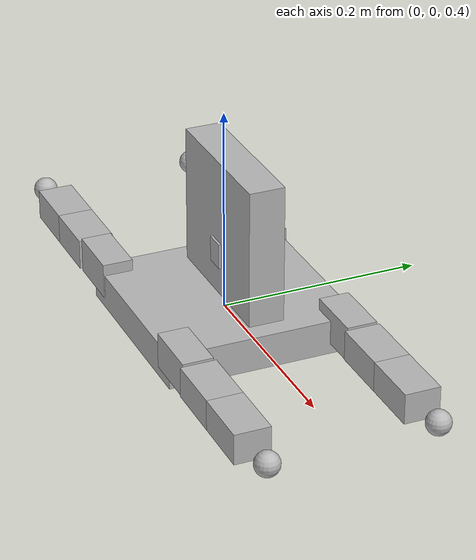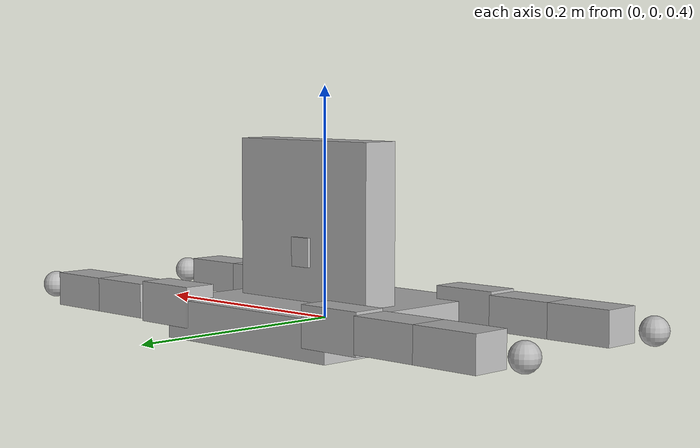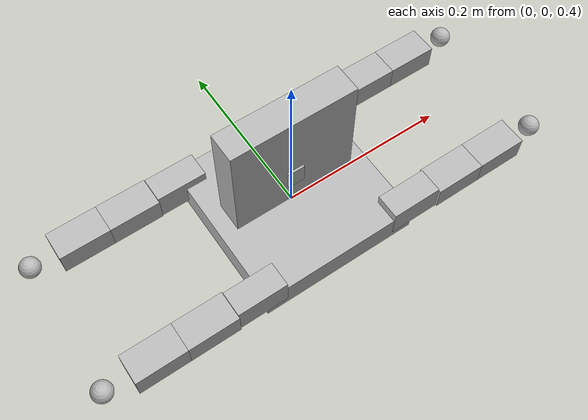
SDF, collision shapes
<?xml version="1.0"?>
<sdf version="1.4">
  <model name="mj_mech">
    <static>false</static>

    <link name="chassis">
      <pose>0 0 0.400000 0 0 0</pose>
      <inertial>
        <mass>1.050000</mass>
        <inertia>
          <ixx>0.015162</ixx>
          <ixy>0.00</ixy>
          <ixz>0.00</ixz>
          <iyy>0.015162</iyy>
          <iyz>0.00</iyz>
          <izz>0.015162</izz>
        </inertia>
      </inertial>
      <collision name="collision">
        <geometry><box><size>0.190000 0.190000 0.034000</size></box></geometry>
      </collision>
      <visual name="visual">
        <geometry><mesh><uri>file://chassis.dae</uri></mesh></geometry>
      </visual>
    </link>

    <link name="pan_aeg">
      <pose>0.000000 0.010000 0.459000 0.000000 0.000000 0.000000</pose>
      <inertial>
        <mass>0.100000</mass>
        <inertia>
          <ixx>0.000160</ixx>
          <ixy>0.00</ixy>
          <ixz>0.00</ixz>
          <iyy>0.000160</iyy>
          <iyz>0.00</iyz>
          <izz>0.000160</izz>
        </inertia>
      </inertial>
      <collision name="collision">
        <geometry><box><size>0.020000 0.040000 0.025000</size></box></geometry>

      </collision>
      <visual name="visual">
        <geometry><mesh><uri>pan_bracket.dae</uri></mesh></geometry>
      </visual>
    </link>

    <joint type="revolute" name="pan_aeg_hinge">
      <pose>0.000000 0.000000 0.000000 0 0 0</pose>
      <child>pan_aeg</child>
      <parent>chassis</parent>
      <axis>
        <xyz>0.000000 0.000000 1.000000</xyz>
        <dynamics><damping>0.1</damping><friction>0.1</friction></dynamics>
        <limit>
          <effort>1.200000</effort>
          <velocity>3.0</velocity>
        </limit>
      </axis>
    </joint>

    <link name="weapon_assembly">
      <pose>0.000000 0.010000 0.479000 0.000000 0.000000 0.000000</pose>
      <inertial>
        <mass>0.550000</mass>
        <inertia>
          <ixx>0.026400</ixx>
          <ixy>0.00</ixy>
          <ixz>0.00</ixz>
          <iyy>0.026400</iyy>
          <iyz>0.00</iyz>
          <izz>0.026400</izz>
        </inertia>
      </inertial>
      <collision name="collision">
        <geometry><box><size>0.150000 0.035000 0.150000</size></box></geometry>

      </collision>
      <visual name="visual">
        <geometry><mesh><uri>weapon_assembly.dae</uri></mesh></geometry>
      </visual>
    </link>

    <joint type="revolute" name="weapon_assembly_hinge">
      <pose>0.000000 0.000000 0.000000 0 0 0</pose>
      <child>weapon_assembly</child>
      <parent>pan_aeg</parent>
      <axis>
        <xyz>1.000000 0.000000 0.000000</xyz>
        <dynamics><damping>0.1</damping><friction>0.1</friction></dynamics>
        <limit>
          <effort>1.200000</effort>
          <velocity>3.0</velocity>
        </limit>
      </axis>
    </joint>

    <link name="coxa0">
      <pose>0.100000 0.081000 0.411000 0.000000 0.000000 0.000000</pose>
      <inertial>
        <mass>0.067000</mass>
        <inertia>
          <ixx>0.000965</ixx>
          <ixy>0.00</ixy>
          <ixz>0.00</ixz>
          <iyy>0.000965</iyy>
          <iyz>0.00</iyz>
          <izz>0.000965</izz>
        </inertia>
      </inertial>
      <collision name="collision">
        <geometry><box><size>0.060000 0.030000 0.035000</size></box></geometry>

      </collision>
      <visual name="visual">
        <geometry><mesh><uri>file://coxa.dae</uri></mesh></geometry>
      </visual>
    </link>

    <joint type="revolute" name="coxa_hinge0">
      <pose>0.000000 0.000000 0.000000 0 0 0</pose>
      <child>coxa0</child>
      <parent>chassis</parent>
      <axis>
        <xyz>0.000000 0.000000 1.000000</xyz>
        <dynamics><damping>0.1</damping><friction>0.1</friction></dynamics>
        <limit>
          <effort>1.200000</effort>
          <velocity>3.0</velocity>
        </limit>
      </axis>
    </joint>

    <link name="femur0">
      <pose>0.160000 0.081000 0.411000 0.000000 0.000000 0.000000</pose>
      <inertial>
        <mass>0.067000</mass>
        <inertia>
          <ixx>0.000965</ixx>
          <ixy>0.00</ixy>
          <ixz>0.00</ixz>
          <iyy>0.000965</iyy>
          <iyz>0.00</iyz>
          <izz>0.000965</izz>
        </inertia>
      </inertial>
      <collision name="collision">
        <geometry><box><size>0.060000 0.035000 0.030000</size></box></geometry>

      </collision>
      <visual name="visual">
        <geometry><mesh><uri>file://femur.dae</uri></mesh></geometry>
      </visual>
    </link>

    <joint type="revolute" name="femur_hinge0">
      <pose>0.000000 0.000000 0.000000 0 0 0</pose>
      <child>femur0</child>
      <parent>coxa0</parent>
      <axis>
        <xyz>0.000000 1.000000 0.000000</xyz>
        <dynamics><damping>0.1</damping><friction>0.1</friction></dynamics>
        <limit>
          <effort>1.200000</effort>
          <velocity>3.0</velocity>
        </limit>
      </axis>
    </joint>

    <link name="tibia0">
      <pose>0.220000 0.081000 0.411000 0.000000 0.000000 0.000000</pose>
      <inertial>
        <mass>0.067000</mass>
        <inertia>
          <ixx>0.000965</ixx>
          <ixy>0.00</ixy>
          <ixz>0.00</ixz>
          <iyy>0.000965</iyy>
          <iyz>0.00</iyz>
          <izz>0.000965</izz>
        </inertia>
      </inertial>
      <collision name="collision">
        <geometry><box><size>0.060000 0.035000 0.030000</size></box></geometry>

      </collision>
      <visual name="visual">
        <geometry><mesh><uri>file://bracket_long_tip.dae</uri></mesh></geometry>
      </visual>
    </link>

    <joint type="revolute" name="tibia_hinge0">
      <pose>0.000000 0.000000 0.000000 0 0 0</pose>
      <child>tibia0</child>
      <parent>femur0</parent>
      <axis>
        <xyz>0.000000 1.000000 0.000000</xyz>
        <dynamics><damping>0.1</damping><friction>0.1</friction></dynamics>
        <limit>
          <effort>1.200000</effort>
          <velocity>3.0</velocity>
        </limit>
      </axis>
    </joint>

    <link name="tip0">
      <pose>0.280000 0.081000 0.411000 0 0 0</pose>
      <inertial>
        <mass>0.020000</mass>
        <inertia>
          <ixx>0.000002</ixx>
          <ixy>0.00</ixy>
          <ixz>0.00</ixz>
          <iyy>0.000002</iyy>
          <iyz>0.00</iyz>
          <izz>0.000002</izz>
        </inertia>
      </inertial>
      <collision name="collision">
        <geometry><sphere><radius>0.012000</radius></sphere></geometry>

      </collision>
      <visual name="visual">
        <geometry><empty/></geometry>
      </visual>
    </link>

    <joint type="revolute" name="tip_hinge0">
      <pose>0.000000 0.000000 0.000000 0 0 0</pose>
      <child>tip0</child>
      <parent>tibia0</parent>
      <axis>
        <xyz>1 0 0</xyz>
        <limit>
          <upper>0</upper>
          <lower>0</lower>
        </limit>
        <dynamics><damping>0.1</damping><friction>0.1</friction></dynamics>
      </axis>
    </joint>

    <link name="coxa1">
      <pose>0.100000 -0.081000 0.411000 0.000000 0.000000 0.000000</pose>
      <inertial>
        <mass>0.067000</mass>
        <inertia>
          <ixx>0.000965</ixx>
          <ixy>0.00</ixy>
          <ixz>0.00</ixz>
          <iyy>0.000965</iyy>
          <iyz>0.00</iyz>
          <izz>0.000965</izz>
        </inertia>
      </inertial>
      <collision name="collision">
        <geometry><box><size>0.060000 0.030000 0.035000</size></box></geometry>

      </collision>
      <visual name="visual">
        <geometry><mesh><uri>file://coxa.dae</uri></mesh></geometry>
      </visual>
    </link>

    <joint type="revolute" name="coxa_hinge1">
      <pose>0.000000 0.000000 0.000000 0 0 0</pose>
      <child>coxa1</child>
      <parent>chassis</parent>
      <axis>
        <xyz>0.000000 0.000000 1.000000</xyz>
        <dynamics><damping>0.1</damping><friction>0.1</friction></dynamics>
        <limit>
          <effort>1.200000</effort>
          <velocity>3.0</velocity>
        </limit>
      </axis>
    </joint>

    <link name="femur1">
      <pose>0.160000 -0.081000 0.411000 0.000000 0.000000 0.000000</pose>
      <inertial>
        <mass>0.067000</mass>
        <inertia>
          <ixx>0.000965</ixx>
          <ixy>0.00</ixy>
          <ixz>0.00</ixz>
          <iyy>0.000965</iyy>
          <iyz>0.00</iyz>
          <izz>0.000965</izz>
        </inertia>
      </inertial>
      <collision name="collision">
        <geometry><box><size>0.060000 0.035000 0.030000</size></box></geometry>

      </collision>
      <visual name="visual">
        <geometry><mesh><uri>file://femur.dae</uri></mesh></geometry>
      </visual>
    </link>

    <joint type="revolute" name="femur_hinge1">
      <pose>0.000000 0.000000 0.000000 0 0 0</pose>
      <child>femur1</child>
      <parent>coxa1</parent>
      <axis>
        <xyz>0.000000 1.000000 0.000000</xyz>
        <dynamics><damping>0.1</damping><friction>0.1</friction></dynamics>
        <limit>
          <effort>1.200000</effort>
          <velocity>3.0</velocity>
        </limit>
      </axis>
    </joint>

    <link name="tibia1">
      <pose>0.220000 -0.081000 0.411000 0.000000 0.000000 0.000000</pose>
      <inertial>
        <mass>0.067000</mass>
        <inertia>
          <ixx>0.000965</ixx>
          <ixy>0.00</ixy>
          <ixz>0.00</ixz>
          <iyy>0.000965</iyy>
          <iyz>0.00</iyz>
          <izz>0.000965</izz>
        </inertia>
      </inertial>
      <collision name="collision">
        <geometry><box><size>0.060000 0.035000 0.030000</size></box></geometry>

      </collision>
      <visual name="visual">
        <geometry><mesh><uri>file://bracket_long_tip.dae</uri></mesh></geometry>
      </visual>
    </link>

    <joint type="revolute" name="tibia_hinge1">
      <pose>0.000000 0.000000 0.000000 0 0 0</pose>
      <child>tibia1</child>
      <parent>femur1</parent>
      <axis>
        <xyz>0.000000 1.000000 0.000000</xyz>
        <dynamics><damping>0.1</damping><friction>0.1</friction></dynamics>
        <limit>
          <effort>1.200000</effort>
          <velocity>3.0</velocity>
        </limit>
      </axis>
    </joint>

    <link name="tip1">
      <pose>0.280000 -0.081000 0.411000 0 0 0</pose>
      <inertial>
        <mass>0.020000</mass>
        <inertia>
          <ixx>0.000002</ixx>
          <ixy>0.00</ixy>
          <ixz>0.00</ixz>
          <iyy>0.000002</iyy>
          <iyz>0.00</iyz>
          <izz>0.000002</izz>
        </inertia>
      </inertial>
      <collision name="collision">
        <geometry><sphere><radius>0.012000</radius></sphere></geometry>

      </collision>
      <visual name="visual">
        <geometry><empty/></geometry>
      </visual>
    </link>

    <joint type="revolute" name="tip_hinge1">
      <pose>0.000000 0.000000 0.000000 0 0 0</pose>
      <child>tip1</child>
      <parent>tibia1</parent>
      <axis>
        <xyz>1 0 0</xyz>
        <limit>
          <upper>0</upper>
          <lower>0</lower>
        </limit>
        <dynamics><damping>0.1</damping><friction>0.1</friction></dynamics>
      </axis>
    </joint>

    <link name="coxa2">
      <pose>-0.100000 -0.081000 0.411000 0.000000 0.000000 3.141593</pose>
      <inertial>
        <mass>0.067000</mass>
        <inertia>
          <ixx>0.000965</ixx>
          <ixy>0.00</ixy>
          <ixz>0.00</ixz>
          <iyy>0.000965</iyy>
          <iyz>0.00</iyz>
          <izz>0.000965</izz>
        </inertia>
      </inertial>
      <collision name="collision">
        <geometry><box><size>0.060000 0.030000 0.035000</size></box></geometry>

      </collision>
      <visual name="visual">
        <geometry><mesh><uri>file://coxa.dae</uri></mesh></geometry>
      </visual>
    </link>

    <joint type="revolute" name="coxa_hinge2">
      <pose>0.000000 0.000000 0.000000 0 0 0</pose>
      <child>coxa2</child>
      <parent>chassis</parent>
      <axis>
        <xyz>0.000000 0.000000 1.000000</xyz>
        <dynamics><damping>0.1</damping><friction>0.1</friction></dynamics>
        <limit>
          <effort>1.200000</effort>
          <velocity>3.0</velocity>
        </limit>
      </axis>
    </joint>

    <link name="femur2">
      <pose>-0.160000 -0.081000 0.411000 0.000000 0.000000 3.141593</pose>
      <inertial>
        <mass>0.067000</mass>
        <inertia>
          <ixx>0.000965</ixx>
          <ixy>0.00</ixy>
          <ixz>0.00</ixz>
          <iyy>0.000965</iyy>
          <iyz>0.00</iyz>
          <izz>0.000965</izz>
        </inertia>
      </inertial>
      <collision name="collision">
        <geometry><box><size>0.060000 0.035000 0.030000</size></box></geometry>

      </collision>
      <visual name="visual">
        <geometry><mesh><uri>file://femur.dae</uri></mesh></geometry>
      </visual>
    </link>

    <joint type="revolute" name="femur_hinge2">
      <pose>0.000000 0.000000 0.000000 0 0 0</pose>
      <child>femur2</child>
      <parent>coxa2</parent>
      <axis>
        <xyz>0.000000 -1.000000 0.000000</xyz>
        <dynamics><damping>0.1</damping><friction>0.1</friction></dynamics>
        <limit>
          <effort>1.200000</effort>
          <velocity>3.0</velocity>
        </limit>
      </axis>
    </joint>

    <link name="tibia2">
      <pose>-0.220000 -0.081000 0.411000 0.000000 0.000000 3.141593</pose>
      <inertial>
        <mass>0.067000</mass>
        <inertia>
          <ixx>0.000965</ixx>
          <ixy>0.00</ixy>
          <ixz>0.00</ixz>
          <iyy>0.000965</iyy>
          <iyz>0.00</iyz>
          <izz>0.000965</izz>
        </inertia>
      </inertial>
      <collision name="collision">
        <geometry><box><size>0.060000 0.035000 0.030000</size></box></geometry>

      </collision>
      <visual name="visual">
        <geometry><mesh><uri>file://bracket_long_tip.dae</uri></mesh></geometry>
      </visual>
    </link>

    <joint type="revolute" name="tibia_hinge2">
      <pose>0.000000 0.000000 0.000000 0 0 0</pose>
      <child>tibia2</child>
      <parent>femur2</parent>
      <axis>
        <xyz>0.000000 -1.000000 0.000000</xyz>
        <dynamics><damping>0.1</damping><friction>0.1</friction></dynamics>
        <limit>
          <effort>1.200000</effort>
          <velocity>3.0</velocity>
        </limit>
      </axis>
    </joint>

    <link name="tip2">
      <pose>-0.280000 -0.081000 0.411000 0 0 0</pose>
      <inertial>
        <mass>0.020000</mass>
        <inertia>
          <ixx>0.000002</ixx>
          <ixy>0.00</ixy>
          <ixz>0.00</ixz>
          <iyy>0.000002</iyy>
          <iyz>0.00</iyz>
          <izz>0.000002</izz>
        </inertia>
      </inertial>
      <collision name="collision">
        <geometry><sphere><radius>0.012000</radius></sphere></geometry>

      </collision>
      <visual name="visual">
        <geometry><empty/></geometry>
      </visual>
    </link>

    <joint type="revolute" name="tip_hinge2">
      <pose>0.000000 0.000000 0.000000 0 0 0</pose>
      <child>tip2</child>
      <parent>tibia2</parent>
      <axis>
        <xyz>1 0 0</xyz>
        <limit>
          <upper>0</upper>
          <lower>0</lower>
        </limit>
        <dynamics><damping>0.1</damping><friction>0.1</friction></dynamics>
      </axis>
    </joint>

    <link name="coxa3">
      <pose>-0.100000 0.081000 0.411000 0.000000 0.000000 3.141593</pose>
      <inertial>
        <mass>0.067000</mass>
        <inertia>
          <ixx>0.000965</ixx>
          <ixy>0.00</ixy>
          <ixz>0.00</ixz>
          <iyy>0.000965</iyy>
          <iyz>0.00</iyz>
          <izz>0.000965</izz>
        </inertia>
      </inertial>
      <collision name="collision">
        <geometry><box><size>0.060000 0.030000 0.035000</size></box></geometry>

      </collision>
      <visual name="visual">
        <geometry><mesh><uri>file://coxa.dae</uri></mesh></geometry>
      </visual>
    </link>

    <joint type="revolute" name="coxa_hinge3">
      <pose>0.000000 0.000000 0.000000 0 0 0</pose>
      <child>coxa3</child>
      <parent>chassis</parent>
      <axis>
        <xyz>0.000000 0.000000 1.000000</xyz>
        <dynamics><damping>0.1</damping><friction>0.1</friction></dynamics>
        <limit>
          <effort>1.200000</effort>
          <velocity>3.0</velocity>
        </limit>
      </axis>
    </joint>

    <link name="femur3">
      <pose>-0.160000 0.081000 0.411000 0.000000 0.000000 3.141593</pose>
      <inertial>
        <mass>0.067000</mass>
        <inertia>
          <ixx>0.000965</ixx>
          <ixy>0.00</ixy>
          <ixz>0.00</ixz>
          <iyy>0.000965</iyy>
          <iyz>0.00</iyz>
          <izz>0.000965</izz>
        </inertia>
      </inertial>
      <collision name="collision">
        <geometry><box><size>0.060000 0.035000 0.030000</size></box></geometry>

      </collision>
      <visual name="visual">
        <geometry><mesh><uri>file://femur.dae</uri></mesh></geometry>
      </visual>
    </link>

    <joint type="revolute" name="femur_hinge3">
      <pose>0.000000 0.000000 0.000000 0 0 0</pose>
      <child>femur3</child>
      <parent>coxa3</parent>
      <axis>
        <xyz>0.000000 -1.000000 0.000000</xyz>
        <dynamics><damping>0.1</damping><friction>0.1</friction></dynamics>
        <limit>
          <effort>1.200000</effort>
          <velocity>3.0</velocity>
        </limit>
      </axis>
    </joint>

    <link name="tibia3">
      <pose>-0.220000 0.081000 0.411000 0.000000 0.000000 3.141593</pose>
      <inertial>
        <mass>0.067000</mass>
        <inertia>
          <ixx>0.000965</ixx>
          <ixy>0.00</ixy>
          <ixz>0.00</ixz>
          <iyy>0.000965</iyy>
          <iyz>0.00</iyz>
          <izz>0.000965</izz>
        </inertia>
      </inertial>
      <collision name="collision">
        <geometry><box><size>0.060000 0.035000 0.030000</size></box></geometry>

      </collision>
      <visual name="visual">
        <geometry><mesh><uri>file://bracket_long_tip.dae</uri></mesh></geometry>
      </visual>
    </link>

    <joint type="revolute" name="tibia_hinge3">
      <pose>0.000000 0.000000 0.000000 0 0 0</pose>
      <child>tibia3</child>
      <parent>femur3</parent>
      <axis>
        <xyz>0.000000 -1.000000 0.000000</xyz>
        <dynamics><damping>0.1</damping><friction>0.1</friction></dynamics>
        <limit>
          <effort>1.200000</effort>
          <velocity>3.0</velocity>
        </limit>
      </axis>
    </joint>

    <link name="tip3">
      <pose>-0.280000 0.081000 0.411000 0 0 0</pose>
      <inertial>
        <mass>0.020000</mass>
        <inertia>
          <ixx>0.000002</ixx>
          <ixy>0.00</ixy>
          <ixz>0.00</ixz>
          <iyy>0.000002</iyy>
          <iyz>0.00</iyz>
          <izz>0.000002</izz>
        </inertia>
      </inertial>
      <collision name="collision">
        <geometry><sphere><radius>0.012000</radius></sphere></geometry>

      </collision>
      <visual name="visual">
        <geometry><empty/></geometry>
      </visual>
    </link>

    <joint type="revolute" name="tip_hinge3">
      <pose>0.000000 0.000000 0.000000 0 0 0</pose>
      <child>tip3</child>
      <parent>tibia3</parent>
      <axis>
        <xyz>1 0 0</xyz>
        <limit>
          <upper>0</upper>
          <lower>0</lower>
        </limit>
        <dynamics><damping>0.1</damping><friction>0.1</friction></dynamics>
      </axis>
    </joint>

  </model>
</sdf>
